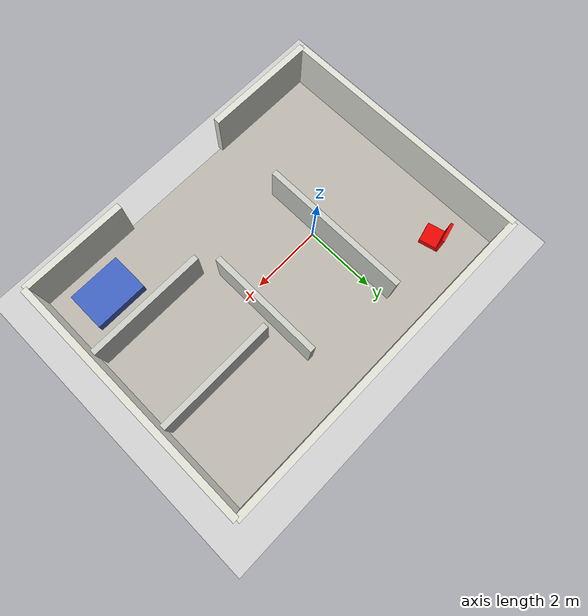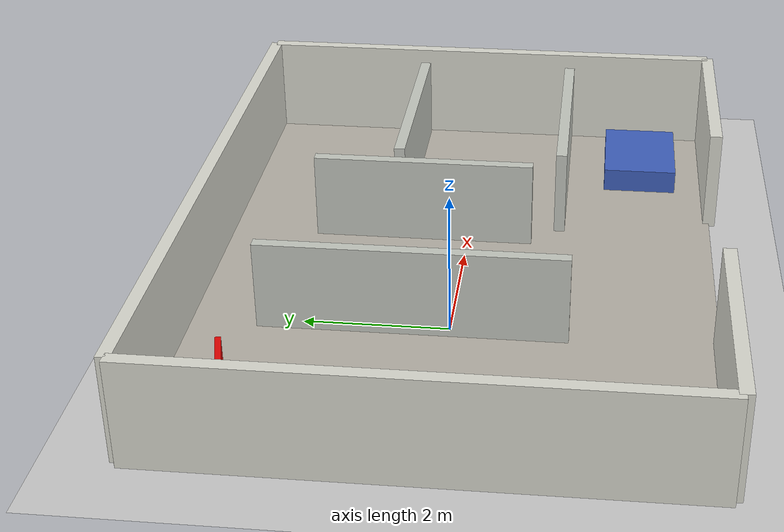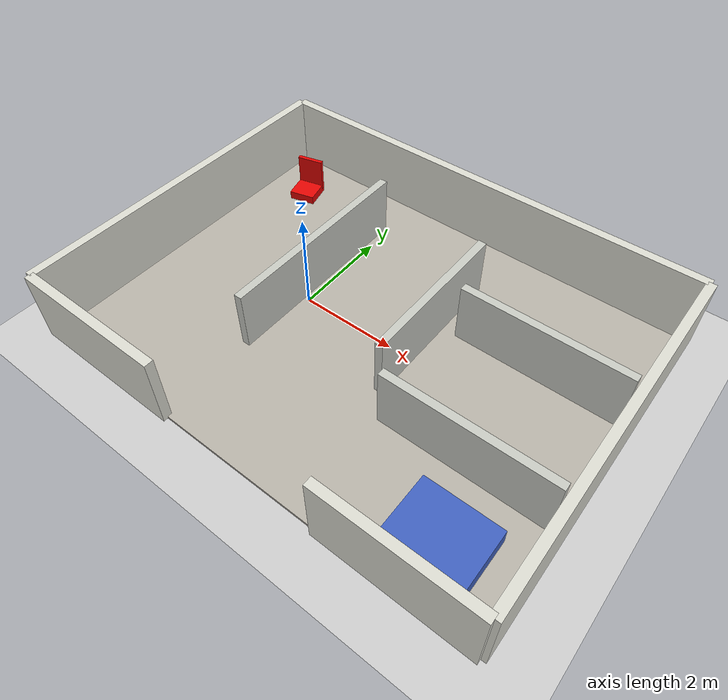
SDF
<?xml version="1.0" ?>
<sdf version="1.6">
  <world name="small_house_world">
    <include>
      <uri>model://sun</uri>
    </include>

    <include>
      <uri>model://ground_plane</uri>
    </include>

    <physics name="default_physics" type="ode">
      <max_step_size>0.001</max_step_size>
      <real_time_factor>1.0</real_time_factor>
    </physics>

    <model name="house_floor">
      <static>true</static>
      <pose>1.5 0 0 0 0 0</pose>
      <link name="link">
        <collision name="collision">
          <geometry><box><size>9.5 7.2 0.08</size></box></geometry>
        </collision>
        <visual name="visual">
          <geometry><box><size>9.5 7.2 0.08</size></box></geometry>
          <material>
            <ambient>0.72 0.70 0.66 1</ambient>
            <diffuse>0.72 0.70 0.66 1</diffuse>
          </material>
        </visual>
      </link>
    </model>

    <!-- Outer walls: four walls with door openings near the robot start. -->
    <model name="outer_wall_north">
      <static>true</static>
      <pose>1.5 3.6 0.75 0 0 0</pose>
      <link name="link">
        <collision name="collision"><geometry><box><size>9.5 0.18 1.5</size></box></geometry></collision>
        <visual name="visual"><geometry><box><size>9.5 0.18 1.5</size></box></geometry><material><ambient>0.86 0.86 0.82 1</ambient><diffuse>0.86 0.86 0.82 1</diffuse></material></visual>
      </link>
    </model>
    <model name="outer_wall_south_left">
      <static>true</static>
      <pose>-1.65 -3.6 0.75 0 0 0</pose>
      <link name="link">
        <collision name="collision"><geometry><box><size>3.2 0.18 1.5</size></box></geometry></collision>
        <visual name="visual"><geometry><box><size>3.2 0.18 1.5</size></box></geometry><material><ambient>0.86 0.86 0.82 1</ambient><diffuse>0.86 0.86 0.82 1</diffuse></material></visual>
      </link>
    </model>
    <model name="outer_wall_south_right">
      <static>true</static>
      <pose>4.75 -3.6 0.75 0 0 0</pose>
      <link name="link">
        <collision name="collision"><geometry><box><size>3.0 0.18 1.5</size></box></geometry></collision>
        <visual name="visual"><geometry><box><size>3.0 0.18 1.5</size></box></geometry><material><ambient>0.86 0.86 0.82 1</ambient><diffuse>0.86 0.86 0.82 1</diffuse></material></visual>
      </link>
    </model>
    <model name="outer_wall_west">
      <static>true</static>
      <pose>-3.25 0 0.75 0 0 0</pose>
      <link name="link">
        <collision name="collision"><geometry><box><size>0.18 7.2 1.5</size></box></geometry></collision>
        <visual name="visual"><geometry><box><size>0.18 7.2 1.5</size></box></geometry><material><ambient>0.86 0.86 0.82 1</ambient><diffuse>0.86 0.86 0.82 1</diffuse></material></visual>
      </link>
    </model>
    <model name="outer_wall_east">
      <static>true</static>
      <pose>6.25 0 0.75 0 0 0</pose>
      <link name="link">
        <collision name="collision"><geometry><box><size>0.18 7.2 1.5</size></box></geometry></collision>
        <visual name="visual"><geometry><box><size>0.18 7.2 1.5</size></box></geometry><material><ambient>0.86 0.86 0.82 1</ambient><diffuse>0.86 0.86 0.82 1</diffuse></material></visual>
      </link>
    </model>

    <!-- Interior layout: rooms and corridors. Semantic objects are limited to a red chair and a blue bed. -->
    <model name="hall_wall_left">
      <static>true</static>
      <pose>-0.15 0.50 0.65 0 0 0</pose>
      <link name="link">
        <collision name="collision"><geometry><box><size>0.16 4.2 1.3</size></box></geometry></collision>
        <visual name="visual"><geometry><box><size>0.16 4.2 1.3</size></box></geometry><material><ambient>0.78 0.79 0.76 1</ambient><diffuse>0.78 0.79 0.76 1</diffuse></material></visual>
      </link>
    </model>
    <model name="hall_wall_right">
      <static>true</static>
      <pose>2.45 0.65 0.65 0 0 0</pose>
      <link name="link">
        <collision name="collision"><geometry><box><size>0.16 3.2 1.3</size></box></geometry></collision>
        <visual name="visual"><geometry><box><size>0.16 3.2 1.3</size></box></geometry><material><ambient>0.78 0.79 0.76 1</ambient><diffuse>0.78 0.79 0.76 1</diffuse></material></visual>
      </link>
    </model>
    <model name="north_room_wall">
      <static>true</static>
      <pose>4.45 1.05 0.65 0 0 1.5708</pose>
      <link name="link">
        <collision name="collision"><geometry><box><size>0.16 3.3 1.3</size></box></geometry></collision>
        <visual name="visual"><geometry><box><size>0.16 3.3 1.3</size></box></geometry><material><ambient>0.78 0.79 0.76 1</ambient><diffuse>0.78 0.79 0.76 1</diffuse></material></visual>
      </link>
    </model>
    <model name="south_room_wall">
      <static>true</static>
      <pose>4.45 -1.35 0.65 0 0 1.5708</pose>
      <link name="link">
        <collision name="collision"><geometry><box><size>0.16 3.3 1.3</size></box></geometry></collision>
        <visual name="visual"><geometry><box><size>0.16 3.3 1.3</size></box></geometry><material><ambient>0.78 0.79 0.76 1</ambient><diffuse>0.78 0.79 0.76 1</diffuse></material></visual>
      </link>
    </model>

    <!-- Living room object target: red chair. Current RGB detector treats red as target. -->
    <model name="target_red_chair">
      <static>true</static>
      <pose>-2.1 2.35 0.25 0 0 0.25</pose>
      <link name="seat">
        <collision name="collision"><geometry><box><size>0.55 0.55 0.18</size></box></geometry></collision>
        <visual name="visual"><geometry><box><size>0.55 0.55 0.18</size></box></geometry><material><ambient>0.9 0.02 0.01 1</ambient><diffuse>0.9 0.02 0.01 1</diffuse></material></visual>
      </link>
      <link name="back">
        <pose>0 0.24 0.35 0 0 0</pose>
        <collision name="collision"><geometry><box><size>0.55 0.08 0.7</size></box></geometry></collision>
        <visual name="visual"><geometry><box><size>0.55 0.08 0.7</size></box></geometry><material><ambient>0.9 0.02 0.01 1</ambient><diffuse>0.9 0.02 0.01 1</diffuse></material></visual>
      </link>
    </model>

    <model name="bed">
      <static>true</static>
      <pose>4.9 -2.55 0.25 0 0 0</pose>
      <link name="link">
        <collision name="collision"><geometry><box><size>1.5 1.1 0.35</size></box></geometry></collision>
        <visual name="visual"><geometry><box><size>1.5 1.1 0.35</size></box></geometry><material><ambient>0.25 0.38 0.75 1</ambient><diffuse>0.25 0.38 0.75 1</diffuse></material></visual>
      </link>
    </model>

  </world>
</sdf>
